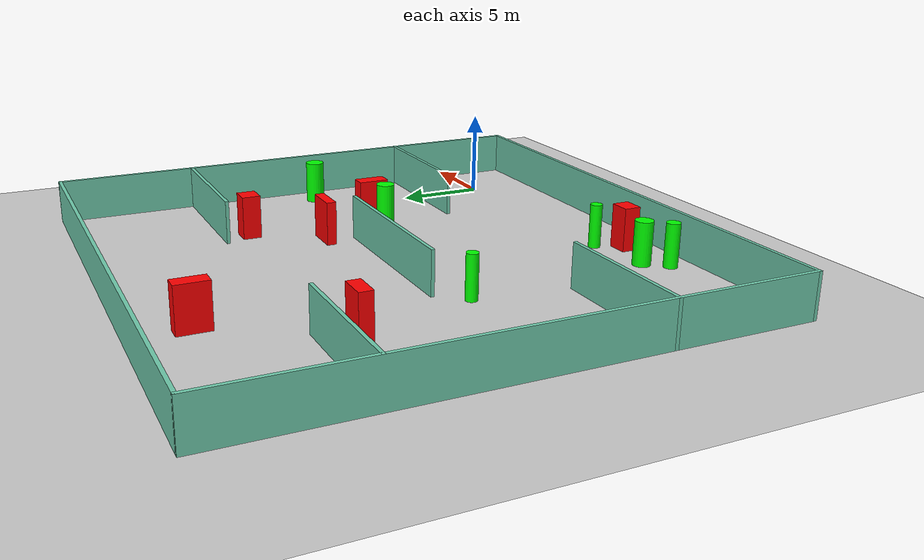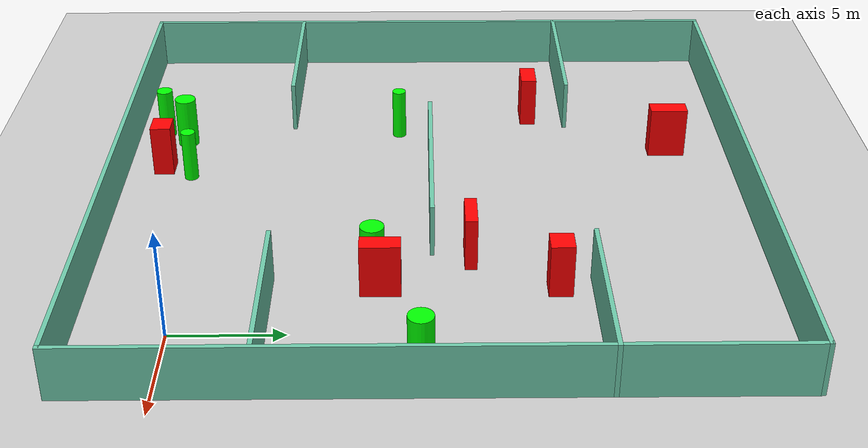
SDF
<sdf version="1.7">
 <world name="default">
  <light name="sun" type="directional">
   <pose>0 0 10 0 -0 0</pose>
   <diffuse>0.8 0.8 0.8 1</diffuse>
   <specular>0.2 0.2 0.2 1</specular>
   <attenuation>
    <range>1000</range>
    <constant>0.9</constant>
    <linear>0.01</linear>
    <quadratic>0.001</quadratic>
   </attenuation>
   <direction>-0.5 0.1 -0.9</direction>
   <spot><inner_angle>0</inner_angle><outer_angle>0</outer_angle><falloff>0</falloff></spot>
  </light>
  <model name="ground_plane">
   <static>1</static>
   <link name="link">
    <collision name="collision">
     <geometry><plane><normal>0 0 1</normal><size>100 100</size></plane></geometry>
     <surface>
      <contact><collide_bitmask>65535</collide_bitmask></contact>
      <friction><ode><mu>100</mu><mu2>50</mu2></ode></friction>
     </surface>
    </collision>
    <visual name="visual">
     <cast_shadows>0</cast_shadows>
     <geometry><plane><normal>0 0 1</normal><size>100 100</size></plane></geometry>
     <material>
      <script><uri>file://media/materials/scripts/gazebo.material</uri><name>Gazebo/Grey</name></script>
     </material>
    </visual>
   </link>
  </model>
  <gravity>0 0 -9.8</gravity>
  <magnetic_field>6e-06 2.3e-05 -4.2e-05</magnetic_field>
  <atmosphere type="adiabatic"/>
  <physics type="ode">
   <max_step_size>0.001</max_step_size>
   <real_time_factor>1</real_time_factor>
   <real_time_update_rate>1000</real_time_update_rate>
  </physics>
  <scene><ambient>0.4 0.4 0.4 1</ambient><background>0.7 0.7 0.7 1</background><shadows>1</shadows></scene>
  <spherical_coordinates>
   <surface_model>EARTH_WGS84</surface_model>
   <latitude_deg>0</latitude_deg>
   <longitude_deg>0</longitude_deg>
   <elevation>0</elevation>
   <heading_deg>0</heading_deg>
  </spherical_coordinates>
  <model name="my_base_walls">
   <link name="Wall_10">
    <collision name="Wall_10_Collision">
     <geometry><box><size>8.2 0.2 2.5</size></box></geometry>
     <pose>0 0 1.25 0 -0 0</pose>
    </collision>
    <visual name="Wall_10_Visual">
     <pose>0 0 1.25 0 -0 0</pose>
     <geometry><box><size>8.2 0.2 2.5</size></box></geometry>
     <material>
      <script><uri>file://media/materials/scripts/gazebo.material</uri><name>Gazebo/Grey</name></script>
      <ambient>0.435294 0.796078 0.67451 1</ambient>
     </material>
     <meta><layer>0</layer></meta>
    </visual>
    <pose>-11 -7 0 0 -0 0</pose>
   </link>
   <link name="Wall_12">
    <collision name="Wall_12_Collision">
     <geometry><box><size>8.2 0.2 2.5</size></box></geometry>
     <pose>0 0 1.25 0 -0 0</pose>
    </collision>
    <visual name="Wall_12_Visual">
     <pose>0 0 1.25 0 -0 0</pose>
     <geometry><box><size>8.2 0.2 2.5</size></box></geometry>
     <material>
      <script><uri>file://media/materials/scripts/gazebo.material</uri><name>Gazebo/Grey</name></script>
      <ambient>0.435294 0.796078 0.67451 1</ambient>
     </material>
     <meta><layer>0</layer></meta>
    </visual>
    <pose>-11 7 0 0 -0 0</pose>
   </link>
   <link name="Wall_14">
    <collision name="Wall_14_Collision">
     <geometry><box><size>8.2 0.2 2.5</size></box></geometry>
     <pose>0 0 1.25 0 -0 0</pose>
    </collision>
    <visual name="Wall_14_Visual">
     <pose>0 0 1.25 0 -0 0</pose>
     <geometry><box><size>8.2 0.2 2.5</size></box></geometry>
     <material>
      <script><uri>file://media/materials/scripts/gazebo.material</uri><name>Gazebo/Grey</name></script>
      <ambient>0.435294 0.796078 0.67451 1</ambient>
     </material>
     <meta><layer>0</layer></meta>
    </visual>
    <pose>11 7 0 0 -0 3.14159</pose>
   </link>
   <link name="Wall_16">
    <collision name="Wall_16_Collision">
     <geometry><box><size>10.2 0.2 2.5</size></box></geometry>
     <pose>0 0 1.25 0 -0 0</pose>
    </collision>
    <visual name="Wall_16_Visual">
     <pose>0 0 1.25 0 -0 0</pose>
     <geometry><box><size>10.2 0.2 2.5</size></box></geometry>
     <material>
      <script><uri>file://media/materials/scripts/gazebo.material</uri><name>Gazebo/Grey</name></script>
      <ambient>0.435294 0.796078 0.67451 1</ambient>
     </material>
     <meta><layer>0</layer></meta>
    </visual>
    <pose>0 0 0 0 -0 3.14159</pose>
   </link>
   <link name="Wall_2">
    <collision name="Wall_2_Collision">
     <geometry><box><size>30.2 0.2 2.5</size></box></geometry>
     <pose>0 0 1.25 0 -0 0</pose>
    </collision>
    <visual name="Wall_2_Visual">
     <pose>0 0 1.25 0 -0 0</pose>
     <geometry><box><size>30.2 0.2 2.5</size></box></geometry>
     <material>
      <script><uri>file://media/materials/scripts/gazebo.material</uri><name>Gazebo/Grey</name></script>
      <ambient>0.435294 0.796078 0.67451 1</ambient>
     </material>
     <meta><layer>0</layer></meta>
    </visual>
    <pose>0 -15 0 0 -0 3.14159</pose>
   </link>
   <link name="Wall_3">
    <collision name="Wall_3_Collision">
     <geometry><box><size>30.2 0.2 2.5</size></box></geometry>
     <pose>0 0 1.25 0 -0 0</pose>
    </collision>
    <visual name="Wall_3_Visual">
     <pose>0 0 1.25 0 -0 0</pose>
     <geometry><box><size>30.2 0.2 2.5</size></box></geometry>
     <material>
      <script><uri>file://media/materials/scripts/gazebo.material</uri><name>Gazebo/Grey</name></script>
      <ambient>0.435294 0.796078 0.67451 1</ambient>
     </material>
     <meta><layer>0</layer></meta>
    </visual>
    <pose>-15 0 0 0 -0 1.5708</pose>
   </link>
   <link name="Wall_4">
    <collision name="Wall_4_Collision">
     <geometry><box><size>30.2 0.2 2.5</size></box></geometry>
     <pose>0 0 1.25 0 -0 0</pose>
    </collision>
    <visual name="Wall_4_Visual">
     <pose>0 0 1.25 0 -0 0</pose>
     <geometry><box><size>30.2 0.2 2.5</size></box></geometry>
     <material>
      <script><uri>file://media/materials/scripts/gazebo.material</uri><name>Gazebo/Grey</name></script>
      <ambient>0.435294 0.796078 0.67451 1</ambient>
     </material>
     <meta><layer>0</layer></meta>
    </visual>
    <pose>0 15 0 0 -0 0</pose>
   </link>
   <link name="Wall_6">
    <collision name="Wall_6_Collision">
     <geometry><box><size>30.2 0.2 2.5</size></box></geometry>
     <pose>0 0 1.25 0 -0 0</pose>
    </collision>
    <visual name="Wall_6_Visual">
     <pose>0 0 1.25 0 -0 0</pose>
     <geometry><box><size>30.2 0.2 2.5</size></box></geometry>
     <material>
      <script><uri>file://media/materials/scripts/gazebo.material</uri><name>Gazebo/Grey</name></script>
      <ambient>0.435294 0.796078 0.67451 1</ambient>
     </material>
     <meta><layer>0</layer></meta>
    </visual>
    <pose>15 0 0 0 -0 1.5708</pose>
   </link>
   <link name="Wall_8">
    <collision name="Wall_8_Collision">
     <geometry><box><size>8.2 0.2 2.5</size></box></geometry>
     <pose>0 0 1.25 0 -0 0</pose>
    </collision>
    <visual name="Wall_8_Visual">
     <pose>0 0 1.25 0 -0 0</pose>
     <geometry><box><size>8.2 0.2 2.5</size></box></geometry>
     <material>
      <script><uri>file://media/materials/scripts/gazebo.material</uri><name>Gazebo/Grey</name></script>
      <ambient>0.435294 0.796078 0.67451 1</ambient>
     </material>
     <meta><layer>0</layer></meta>
    </visual>
    <pose>11 -7 0 0 -0 3.14159</pose>
   </link>
   <static>1</static>
   <pose>-11 11 0 0 -0 0</pose>
  </model>
  <model name="cylinder1">
   <static>1</static>
   <link name="link">
    <inertial>
     <mass>1</mass>
     <inertia><ixx>0.5</ixx><ixy>0</ixy><ixz>0</ixz><iyy>0.5</iyy><iyz>0</iyz><izz>1</izz></inertia>
    </inertial>
    <collision name="collision">
     <geometry><cylinder><radius>0.5082685649460763</radius><length>2.5</length></cylinder></geometry>
    </collision>
    <visual name="visual">
     <geometry><cylinder><radius>0.5082685649460763</radius><length>2.5</length></cylinder></geometry>
     <material>
      <ambient>0 1 0 1</ambient>
      <diffuse>0 1 0 1</diffuse>
      <specular>0.1 0.1 0.1 1</specular>
      <emissive>0 0 0 0</emissive>
     </material>
    </visual>
   </link>
   <pose>-16.47160455679511 -1.3231718034561966 1.25 0 0 0</pose>
  </model>
  <model name="cylinder2">
   <static>1</static>
   <link name="link">
    <inertial>
     <mass>1</mass>
     <inertia><ixx>0.5</ixx><ixy>0</ixy><ixz>0</ixz><iyy>0.5</iyy><iyz>0</iyz><izz>1</izz></inertia>
    </inertial>
    <collision name="collision">
     <geometry><cylinder><radius>0.390028145965902</radius><length>2.5</length></cylinder></geometry>
    </collision>
    <visual name="visual">
     <geometry><cylinder><radius>0.390028145965902</radius><length>2.5</length></cylinder></geometry>
     <material>
      <ambient>0 1 0 1</ambient>
      <diffuse>0 1 0 1</diffuse>
      <specular>0.1 0.1 0.1 1</specular>
      <emissive>0 0 0 0</emissive>
     </material>
    </visual>
   </link>
   <pose>-17.41429709204592 -2.502677441894378 1.25 0 0 0</pose>
  </model>
  <model name="cylinder3">
   <static>1</static>
   <link name="link">
    <inertial>
     <mass>1</mass>
     <inertia><ixx>0.5</ixx><ixy>0</ixy><ixz>0</ixz><iyy>0.5</iyy><iyz>0</iyz><izz>1</izz></inertia>
    </inertial>
    <collision name="collision">
     <geometry><cylinder><radius>0.550800809876852</radius><length>2.5</length></cylinder></geometry>
    </collision>
    <visual name="visual">
     <geometry><cylinder><radius>0.550800809876852</radius><length>2.5</length></cylinder></geometry>
     <material>
      <ambient>0 1 0 1</ambient>
      <diffuse>0 1 0 1</diffuse>
      <specular>0.1 0.1 0.1 1</specular>
      <emissive>0 0 0 0</emissive>
     </material>
    </visual>
   </link>
   <pose>2.118975231087134 10.478743831023268 1.25 0 0 0</pose>
  </model>
  <model name="cylinder4">
   <static>1</static>
   <link name="link">
    <inertial>
     <mass>1</mass>
     <inertia><ixx>0.5</ixx><ixy>0</ixy><ixz>0</ixz><iyy>0.5</iyy><iyz>0</iyz><izz>1</izz></inertia>
    </inertial>
    <collision name="collision">
     <geometry><cylinder><radius>0.33084619119777037</radius><length>2.5</length></cylinder></geometry>
    </collision>
    <visual name="visual">
     <geometry><cylinder><radius>0.33084619119777037</radius><length>2.5</length></cylinder></geometry>
     <material>
      <ambient>0 1 0 1</ambient>
      <diffuse>0 1 0 1</diffuse>
      <specular>0.1 0.1 0.1 1</specular>
      <emissive>0 0 0 0</emissive>
     </material>
    </visual>
   </link>
   <pose>-17.246325371334926 9.435110559169393 1.25 0 0 0</pose>
  </model>
  <model name="cylinder5">
   <static>1</static>
   <link name="link">
    <inertial>
     <mass>1</mass>
     <inertia><ixx>0.5</ixx><ixy>0</ixy><ixz>0</ixz><iyy>0.5</iyy><iyz>0</iyz><izz>1</izz></inertia>
    </inertial>
    <collision name="collision">
     <geometry><cylinder><radius>0.5363321043600991</radius><length>2.5</length></cylinder></geometry>
    </collision>
    <visual name="visual">
     <geometry><cylinder><radius>0.5363321043600991</radius><length>2.5</length></cylinder></geometry>
     <material>
      <ambient>0 1 0 1</ambient>
      <diffuse>0 1 0 1</diffuse>
      <specular>0.1 0.1 0.1 1</specular>
      <emissive>0 0 0 0</emissive>
     </material>
    </visual>
   </link>
   <pose>-4.39196071276389 8.391603604110776 1.25 0 0 0</pose>
  </model>
  <model name="cylinder6">
   <static>1</static>
   <link name="link">
    <inertial>
     <mass>1</mass>
     <inertia><ixx>0.5</ixx><ixy>0</ixy><ixz>0</ixz><iyy>0.5</iyy><iyz>0</iyz><izz>1</izz></inertia>
    </inertial>
    <collision name="collision">
     <geometry><cylinder><radius>0.3392853439525214</radius><length>2.5</length></cylinder></geometry>
    </collision>
    <visual name="visual">
     <geometry><cylinder><radius>0.3392853439525214</radius><length>2.5</length></cylinder></geometry>
     <material>
      <ambient>0 1 0 1</ambient>
      <diffuse>0 1 0 1</diffuse>
      <specular>0.1 0.1 0.1 1</specular>
      <emissive>0 0 0 0</emissive>
     </material>
    </visual>
   </link>
   <pose>-12.967375655996705 -0.7038987108579442 1.25 0 0 0</pose>
  </model>
  <model name="box1">
   <static>1</static>
   <link name="link">
    <inertial>
     <mass>1</mass>
     <inertia><ixx>0.083</ixx><ixy>0</ixy><ixz>0</ixz><iyy>0.083</iyy><iyz>0</iyz><izz>0.083</izz></inertia>
    </inertial>
    <collision name="collision">
     <geometry><box><size>1.5630050002802693 0.7721160229577704 2.5</size></box></geometry>
    </collision>
    <visual name="visual">
     <geometry><box><size>1.5630050002802693 0.7721160229577704 2.5</size></box></geometry>
     <material>
      <ambient>1 0 0 1</ambient>
      <diffuse>1 0 0 1</diffuse>
      <specular>0.1 0.1 0.1 1</specular>
      <emissive>0 0 0 0</emissive>
     </material>
    </visual>
    <sensor name="my_contact" type="contact">
     <contact><collision>box_collision</collision><topic>__default_topic__</topic></contact>
    </sensor>
   </link>
   <pose>-19.08575294243523 16.119527324571393 1.25 0 0 0</pose>
  </model>
  <model name="box2">
   <static>1</static>
   <link name="link">
    <inertial>
     <mass>1</mass>
     <inertia><ixx>0.083</ixx><ixy>0</ixy><ixz>0</ixz><iyy>0.083</iyy><iyz>0</iyz><izz>0.083</izz></inertia>
    </inertial>
    <collision name="collision">
     <geometry><box><size>0.8496882745297565 1.799116940872376 2.5</size></box></geometry>
    </collision>
    <visual name="visual">
     <geometry><box><size>0.8496882745297565 1.799116940872376 2.5</size></box></geometry>
     <material>
      <ambient>1 0 0 1</ambient>
      <diffuse>1 0 0 1</diffuse>
      <specular>0.1 0.1 0.1 1</specular>
      <emissive>0 0 0 0</emissive>
     </material>
    </visual>
    <sensor name="my_contact" type="contact">
     <contact><collision>box_collision</collision><topic>__default_topic__</topic></contact>
    </sensor>
   </link>
   <pose>-15.30444431559065 22.850140511322746 1.25 0 0 0</pose>
  </model>
  <model name="box3">
   <static>1</static>
   <link name="link">
    <inertial>
     <mass>1</mass>
     <inertia><ixx>0.083</ixx><ixy>0</ixy><ixz>0</ixz><iyy>0.083</iyy><iyz>0</iyz><izz>0.083</izz></inertia>
    </inertial>
    <collision name="collision">
     <geometry><box><size>1.1467160023854754 1.0577010113611816 2.5</size></box></geometry>
    </collision>
    <visual name="visual">
     <geometry><box><size>1.1467160023854754 1.0577010113611816 2.5</size></box></geometry>
     <material>
      <ambient>1 0 0 1</ambient>
      <diffuse>1 0 0 1</diffuse>
      <specular>0.1 0.1 0.1 1</specular>
      <emissive>0 0 0 0</emissive>
     </material>
    </visual>
    <sensor name="my_contact" type="contact">
     <contact><collision>box_collision</collision><topic>__default_topic__</topic></contact>
    </sensor>
   </link>
   <pose>-3.1881476396068997 16.478953130862187 1.25 0 0 0</pose>
  </model>
  <model name="box4">
   <static>1</static>
   <link name="link">
    <inertial>
     <mass>1</mass>
     <inertia><ixx>0.083</ixx><ixy>0</ixy><ixz>0</ixz><iyy>0.083</iyy><iyz>0</iyz><izz>0.083</izz></inertia>
    </inertial>
    <collision name="collision">
     <geometry><box><size>1.1648615421372894 0.9750224771544561 2.5</size></box></geometry>
    </collision>
    <visual name="visual">
     <geometry><box><size>1.1648615421372894 0.9750224771544561 2.5</size></box></geometry>
     <material>
      <ambient>1 0 0 1</ambient>
      <diffuse>1 0 0 1</diffuse>
      <specular>0.1 0.1 0.1 1</specular>
      <emissive>0 0 0 0</emissive>
     </material>
    </visual>
    <sensor name="my_contact" type="contact">
     <contact><collision>box_collision</collision><topic>__default_topic__</topic></contact>
    </sensor>
   </link>
   <pose>-13.846684298220186 -2.0966223138645947 1.25 0 0 0</pose>
  </model>
  <model name="box5">
   <static>1</static>
   <link name="link">
    <inertial>
     <mass>1</mass>
     <inertia><ixx>0.083</ixx><ixy>0</ixy><ixz>0</ixz><iyy>0.083</iyy><iyz>0</iyz><izz>0.083</izz></inertia>
    </inertial>
    <collision name="collision">
     <geometry><box><size>0.8661674667735337 1.7823638878775145 2.5</size></box></geometry>
    </collision>
    <visual name="visual">
     <geometry><box><size>0.8661674667735337 1.7823638878775145 2.5</size></box></geometry>
     <material>
      <ambient>1 0 0 1</ambient>
      <diffuse>1 0 0 1</diffuse>
      <specular>0.1 0.1 0.1 1</specular>
      <emissive>0 0 0 0</emissive>
     </material>
    </visual>
    <sensor name="my_contact" type="contact">
     <contact><collision>box_collision</collision><topic>__default_topic__</topic></contact>
    </sensor>
   </link>
   <pose>-3.1177304448446037 8.756592130455529 1.25 0 0 0</pose>
  </model>
  <model name="box6">
   <static>1</static>
   <link name="link">
    <inertial>
     <mass>1</mass>
     <inertia><ixx>0.083</ixx><ixy>0</ixy><ixz>0</ixz><iyy>0.083</iyy><iyz>0</iyz><izz>0.083</izz></inertia>
    </inertial>
    <collision name="collision">
     <geometry><box><size>1.966939606840927 0.5570192334366441 2.5</size></box></geometry>
    </collision>
    <visual name="visual">
     <geometry><box><size>1.966939606840927 0.5570192334366441 2.5</size></box></geometry>
     <material>
      <ambient>1 0 0 1</ambient>
      <diffuse>1 0 0 1</diffuse>
      <specular>0.1 0.1 0.1 1</specular>
      <emissive>0 0 0 0</emissive>
     </material>
    </visual>
    <sensor name="my_contact" type="contact">
     <contact><collision>box_collision</collision><topic>__default_topic__</topic></contact>
    </sensor>
   </link>
   <pose>-5.689852258368099 12.700069122947378 1.25 0 0 0</pose>
  </model>
 </world>
</sdf>
